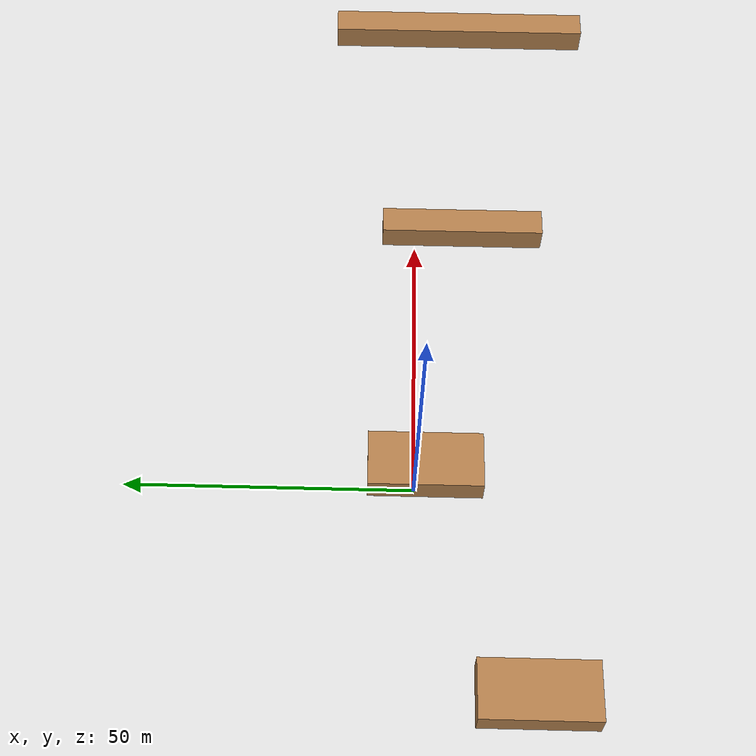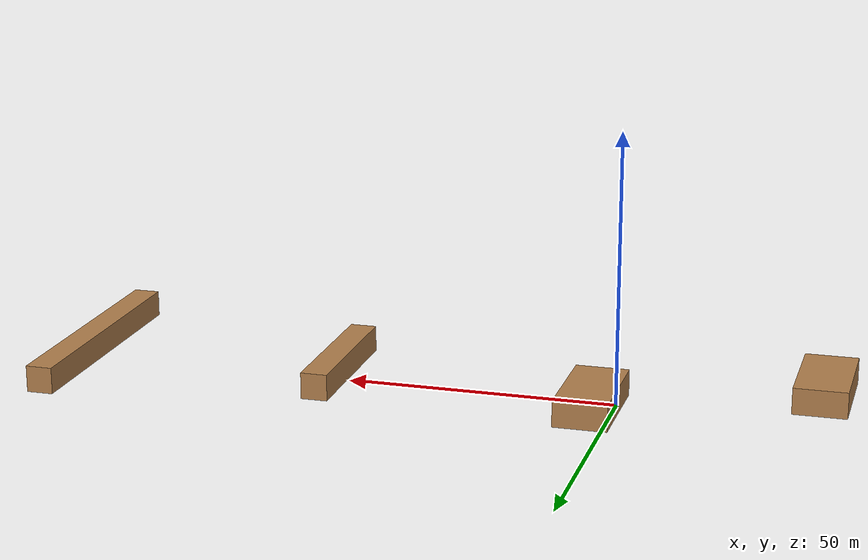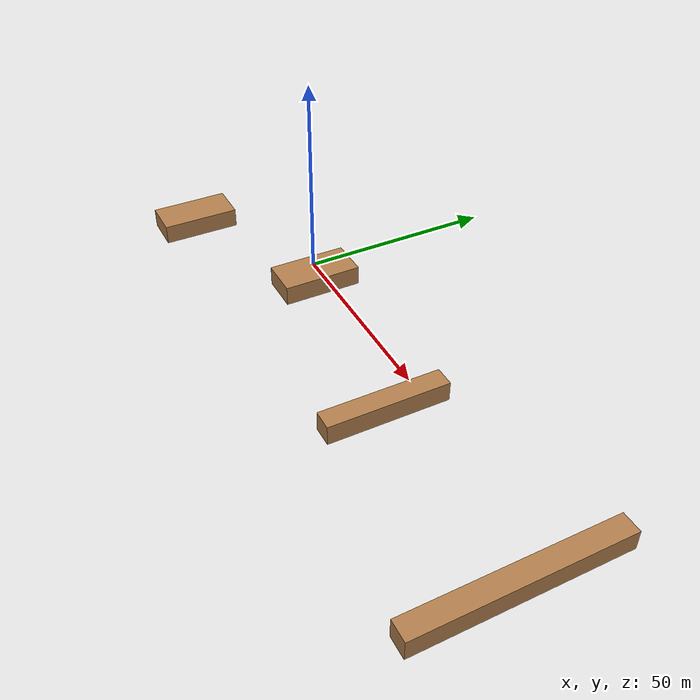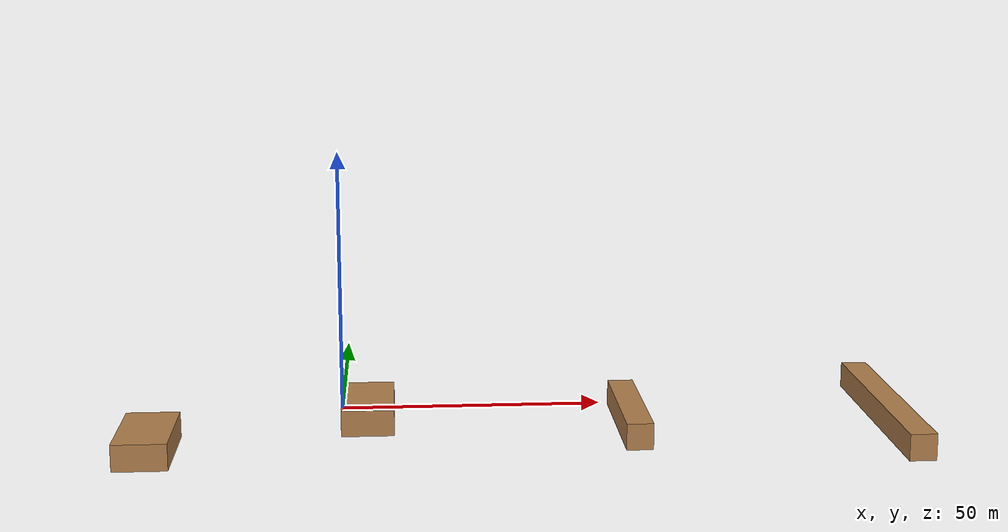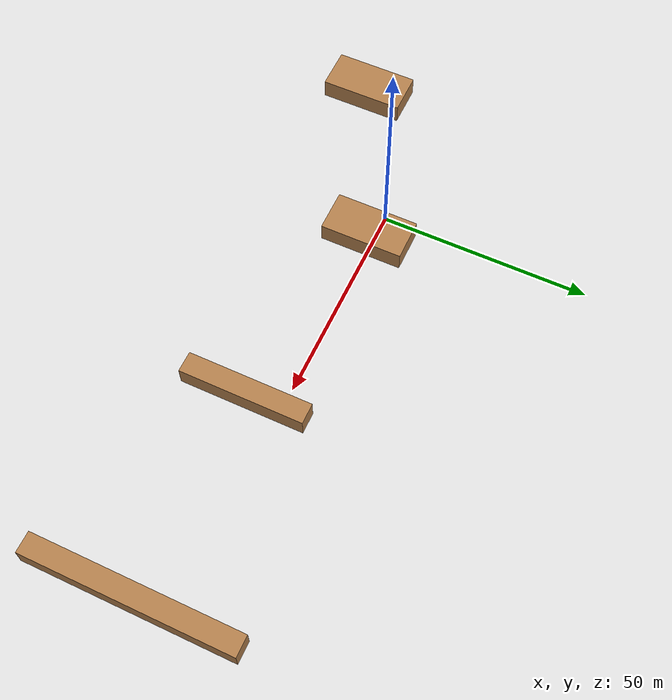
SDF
<sdf version="1.7">
 <world name="ocean_usv_world">
  <scene>
   <sky><clouds><speed>12</speed></clouds></sky>
   <grid>0</grid>
   <origin_visual>0</origin_visual>
   <ambient>0.4 0.4 0.4 1</ambient>
   <background>0.7 0.7 0.7 1</background>
   <shadows>1</shadows>
  </scene>
  <spherical_coordinates>
   <surface_model>EARTH_WGS84</surface_model>
   <world_frame_orientation>ENU</world_frame_orientation>
   <latitude_deg>-33.7242</latitude_deg>
   <longitude_deg>150.68</longitude_deg>
   <elevation>0</elevation>
   <heading_deg>0</heading_deg>
  </spherical_coordinates>
  <light name="sun" type="directional">
   <pose>0 0 10 0 -0 0</pose>
   <diffuse>0.8 0.8 0.8 1</diffuse>
   <specular>0.2 0.2 0.2 1</specular>
   <attenuation>
    <range>1000</range>
    <constant>0.9</constant>
    <linear>0.01</linear>
    <quadratic>0.001</quadratic>
   </attenuation>
   <direction>-0.5 0.1 -0.9</direction>
   <spot><inner_angle>0</inner_angle><outer_angle>0</outer_angle><falloff>0</falloff></spot>
  </light>
  <gravity>0 0 -9.8</gravity>
  <magnetic_field>6e-06 2.3e-05 -4.2e-05</magnetic_field>
  <atmosphere type="adiabatic"/>
  <physics type="ode">
   <max_step_size>0.001</max_step_size>
   <real_time_factor>1</real_time_factor>
   <real_time_update_rate>1000</real_time_update_rate>
  </physics>
  <model name="BOX_0">
   <link name="BOX_0_link">
    <inertial>
     <pose>5.0 -2.0 0.3 0 0 0</pose>
     <mass>10.0</mass>
     <inertia>
      <ixx>354.1666666666667</ixx>
      <ixy>0</ixy>
      <ixz>0</ixz>
      <iyy>104.16666666666667</iyy>
      <iyz>0</iyz>
      <izz>416.6666666666667</izz>
     </inertia>
    </inertial>
    <collision name="BOX_0_link_collision">
     <pose>5.0 -2.0 0.3 0 0 0</pose>
     <geometry><box><size>10.0 20.0 5.0</size></box></geometry>
     <surface>
      <contact><ode><kp>100000</kp><kd>100000</kd></ode></contact>
      <friction><ode><mu>10</mu><mu2>10</mu2></ode></friction>
     </surface>
    </collision>
    <visual name="BOX_0_link_visual">
     <pose>5.0 -2.0 0.3 0 0 0</pose>
     <geometry><box><size>10.0 20.0 5.0</size></box></geometry>
     <material>
      <script><name>Gazebo/WoodFloor</name><uri>file://media/materials/scripts/gazebo.material</uri></script>
     </material>
    </visual>
   </link>
  </model>
  <model name="BOX_1">
   <link name="BOX_1_link">
    <inertial>
     <pose>-35.0 -20.0 0.3 0 0 0</pose>
     <mass>10.0</mass>
     <inertia>
      <ixx>354.1666666666667</ixx>
      <ixy>0</ixy>
      <ixz>0</ixz>
      <iyy>104.16666666666667</iyy>
      <iyz>0</iyz>
      <izz>416.6666666666667</izz>
     </inertia>
    </inertial>
    <collision name="BOX_1_link_collision">
     <pose>-35.0 -20.0 0.3 0 0 0</pose>
     <geometry><box><size>10.0 20.0 5.0</size></box></geometry>
     <surface>
      <contact><ode><kp>100000</kp><kd>100000</kd></ode></contact>
      <friction><ode><mu>10</mu><mu2>10</mu2></ode></friction>
     </surface>
    </collision>
    <visual name="BOX_1_link_visual">
     <pose>-35.0 -20.0 0.3 0 0 0</pose>
     <geometry><box><size>10.0 20.0 5.0</size></box></geometry>
     <material>
      <script><name>Gazebo/WoodFloor</name><uri>file://media/materials/scripts/gazebo.material</uri></script>
     </material>
    </visual>
   </link>
  </model>
  <model name="BOX_2">
   <link name="BOX_2_link">
    <inertial>
     <pose>105.0 -9.0 0.3 0 0 0</pose>
     <mass>10.0</mass>
     <inertia>
      <ixx>2104.166666666667</ixx>
      <ixy>0</ixy>
      <ixz>0</ixz>
      <iyy>41.66666666666667</iyy>
      <iyz>0</iyz>
      <izz>2104.166666666667</izz>
     </inertia>
    </inertial>
    <collision name="BOX_2_link_collision">
     <pose>105.0 -9.0 0.3 0 0 0</pose>
     <geometry><box><size>5.0 50.0 5.0</size></box></geometry>
     <surface>
      <contact><ode><kp>100000</kp><kd>100000</kd></ode></contact>
      <friction><ode><mu>10</mu><mu2>10</mu2></ode></friction>
     </surface>
    </collision>
    <visual name="BOX_2_link_visual">
     <pose>105.0 -9.0 0.3 0 0 0</pose>
     <geometry><box><size>5.0 50.0 5.0</size></box></geometry>
     <material>
      <script><name>Gazebo/WoodFloor</name><uri>file://media/materials/scripts/gazebo.material</uri></script>
     </material>
    </visual>
   </link>
  </model>
  <model name="BOX_3">
   <link name="BOX_3_link">
    <inertial>
     <pose>55.0 -9.0 0.3 0 0 0</pose>
     <mass>10.0</mass>
     <inertia>
      <ixx>770.8333333333334</ixx>
      <ixy>0</ixy>
      <ixz>0</ixz>
      <iyy>41.66666666666667</iyy>
      <iyz>0</iyz>
      <izz>770.8333333333334</izz>
     </inertia>
    </inertial>
    <collision name="BOX_3_link_collision">
     <pose>55.0 -9.0 0.3 0 0 0</pose>
     <geometry><box><size>5.0 30.0 5.0</size></box></geometry>
     <surface>
      <contact><ode><kp>100000</kp><kd>100000</kd></ode></contact>
      <friction><ode><mu>10</mu><mu2>10</mu2></ode></friction>
     </surface>
    </collision>
    <visual name="BOX_3_link_visual">
     <pose>55.0 -9.0 0.3 0 0 0</pose>
     <geometry><box><size>5.0 30.0 5.0</size></box></geometry>
     <material>
      <script><name>Gazebo/WoodFloor</name><uri>file://media/materials/scripts/gazebo.material</uri></script>
     </material>
    </visual>
   </link>
  </model>
 </world>
</sdf>
